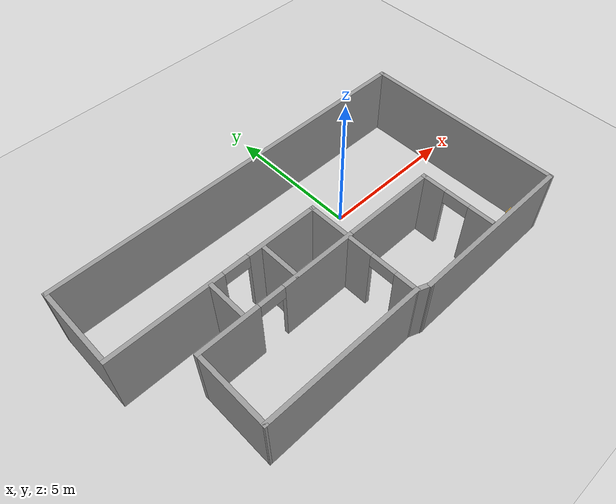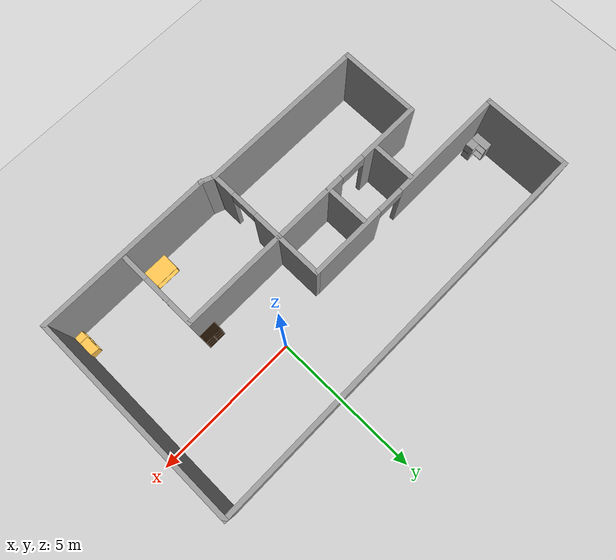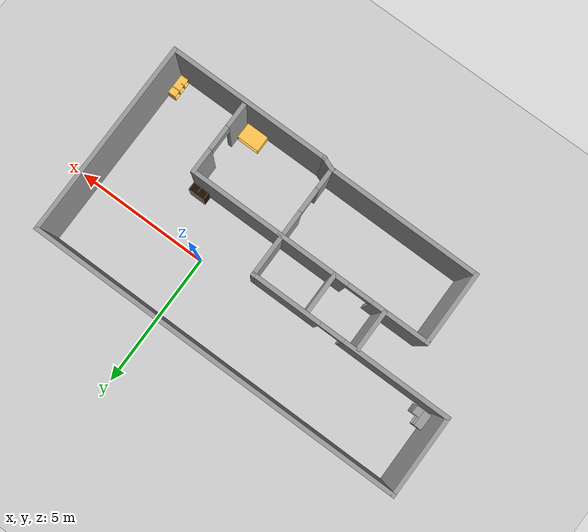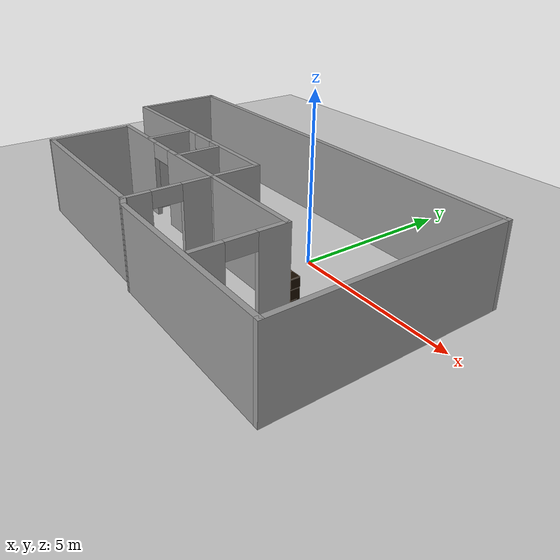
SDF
<sdf version="1.6">
 <world name="default">
  <model name="ground_plane">
   <static>1</static>
   <link name="link">
    <collision name="collision">
     <geometry><plane><normal>0 0 1</normal><size>100 100</size></plane></geometry>
     <surface>
      <contact><collide_bitmask>65535</collide_bitmask></contact>
      <friction><ode><mu>100</mu><mu2>50</mu2></ode></friction>
     </surface>
    </collision>
    <visual name="visual">
     <cast_shadows>0</cast_shadows>
     <geometry><plane><normal>0 0 1</normal><size>100 100</size></plane></geometry>
     <material>
      <script><uri>file://media/materials/scripts/gazebo.material</uri><name>Gazebo/Grey</name></script>
     </material>
    </visual>
   </link>
  </model>
  <model name="Please">
   <pose>-2.39128 -1.23168 0 0 -0 0</pose>
   <link name="Wall_12">
    <pose>0.55 -1.33922 0 0 0 -1.5708</pose>
    <visual name="Wall_12_Visual_0">
     <pose>-0.870785 0 1.25 0 -0 0</pose>
     <geometry><box><size>2.50843 0.15 2.5</size></box></geometry>
     <material>
      <script><uri>file://media/materials/scripts/gazebo.material</uri><name>Gazebo/Grey</name></script>
      <ambient>1 1 1 1</ambient>
     </material>
     <meta><layer>0</layer></meta>
    </visual>
    <collision name="Wall_12_Collision_0">
     <geometry><box><size>2.50843 0.15 2.5</size></box></geometry>
     <pose>-0.870785 0 1.25 0 -0 0</pose>
    </collision>
    <visual name="Wall_12_Visual_1">
     <pose>1.70422 0 1.25 0 -0 0</pose>
     <geometry><box><size>0.84157 0.15 2.5</size></box></geometry>
     <material>
      <script><uri>file://media/materials/scripts/gazebo.material</uri><name>Gazebo/Grey</name></script>
      <ambient>1 1 1 1</ambient>
     </material>
     <meta><layer>0</layer></meta>
    </visual>
    <collision name="Wall_12_Collision_1">
     <geometry><box><size>0.84157 0.15 2.5</size></box></geometry>
     <pose>1.70422 0 1.25 0 -0 0</pose>
    </collision>
    <visual name="Wall_12_Visual_2">
     <pose>0.83343 0 2.25 0 -0 0</pose>
     <geometry><box><size>0.9 0.15 0.5</size></box></geometry>
     <material>
      <script><uri>file://media/materials/scripts/gazebo.material</uri><name>Gazebo/Grey</name></script>
      <ambient>1 1 1 1</ambient>
     </material>
     <meta><layer>0</layer></meta>
    </visual>
    <collision name="Wall_12_Collision_2">
     <geometry><box><size>0.9 0.15 0.5</size></box></geometry>
     <pose>0.83343 0 2.25 0 -0 0</pose>
    </collision>
   </link>
   <link name="Wall_13">
    <collision name="Wall_13_Collision">
     <geometry><box><size>0.5772 0.15 2.5</size></box></geometry>
     <pose>0 0 1.25 0 -0 0</pose>
    </collision>
    <visual name="Wall_13_Visual">
     <pose>0 0 1.25 0 -0 0</pose>
     <geometry><box><size>0.5772 0.15 2.5</size></box></geometry>
     <material>
      <script><uri>file://media/materials/scripts/gazebo.material</uri><name>Gazebo/Grey</name></script>
      <ambient>1 1 1 1</ambient>
     </material>
     <meta><layer>0</layer></meta>
    </visual>
    <pose>0.75 -3.46422 0 0 0 -0.358771</pose>
   </link>
   <link name="Wall_15">
    <collision name="Wall_15_Collision">
     <geometry><box><size>3.5 0.15 2.5</size></box></geometry>
     <pose>0 0 1.25 0 -0 0</pose>
    </collision>
    <visual name="Wall_15_Visual">
     <pose>0 0 1.25 0 -0 0</pose>
     <geometry><box><size>3.5 0.15 2.5</size></box></geometry>
     <material>
      <script><uri>file://media/materials/scripts/gazebo.material</uri><name>Gazebo/Grey</name></script>
      <ambient>1 1 1 1</ambient>
     </material>
     <meta><layer>0</layer></meta>
    </visual>
    <pose>2.30189 -0.773446 0 0 -0 0</pose>
   </link>
   <link name="Wall_16">
    <pose>3.97689 -2.07345 0 0 0 -1.5708</pose>
    <visual name="Wall_16_Visual_0">
     <pose>-0.906623 0 1.25 0 -0 0</pose>
     <geometry><box><size>0.936755 0.15 2.5</size></box></geometry>
     <material>
      <script><uri>file://media/materials/scripts/gazebo.material</uri><name>Gazebo/Grey</name></script>
      <ambient>1 1 1 1</ambient>
     </material>
     <meta><layer>0</layer></meta>
    </visual>
    <collision name="Wall_16_Collision_0">
     <geometry><box><size>0.936755 0.15 2.5</size></box></geometry>
     <pose>-0.906623 0 1.25 0 -0 0</pose>
    </collision>
    <visual name="Wall_16_Visual_1">
     <pose>0.918377 0 1.25 0 -0 0</pose>
     <geometry><box><size>0.913245 0.15 2.5</size></box></geometry>
     <material>
      <script><uri>file://media/materials/scripts/gazebo.material</uri><name>Gazebo/Grey</name></script>
      <ambient>1 1 1 1</ambient>
     </material>
     <meta><layer>0</layer></meta>
    </visual>
    <collision name="Wall_16_Collision_1">
     <geometry><box><size>0.913245 0.15 2.5</size></box></geometry>
     <pose>0.918377 0 1.25 0 -0 0</pose>
    </collision>
    <visual name="Wall_16_Visual_2">
     <pose>0.011755 0 2.25 0 -0 0</pose>
     <geometry><box><size>0.9 0.15 0.5</size></box></geometry>
     <material>
      <script><uri>file://media/materials/scripts/gazebo.material</uri><name>Gazebo/Grey</name></script>
      <ambient>1 1 1 1</ambient>
     </material>
     <meta><layer>0</layer></meta>
    </visual>
    <collision name="Wall_16_Collision_2">
     <geometry><box><size>0.9 0.15 0.5</size></box></geometry>
     <pose>0.011755 0 2.25 0 -0 0</pose>
    </collision>
   </link>
   <link name="Wall_18">
    <pose>-2.17311 -0.773446 0 0 -0 3.14159</pose>
    <visual name="Wall_18_Visual_0">
     <pose>-1.53212 0 1.25 0 -0 0</pose>
     <geometry><box><size>2.68576 0.15 2.5</size></box></geometry>
     <material>
      <script><uri>file://media/materials/scripts/gazebo.material</uri><name>Gazebo/Grey</name></script>
      <ambient>1 1 1 1</ambient>
     </material>
     <meta><layer>0</layer></meta>
    </visual>
    <collision name="Wall_18_Collision_0">
     <geometry><box><size>2.68576 0.15 2.5</size></box></geometry>
     <pose>-1.53212 0 1.25 0 -0 0</pose>
    </collision>
    <visual name="Wall_18_Visual_1">
     <pose>1.79288 0 1.25 0 -0 0</pose>
     <geometry><box><size>2.16424 0.15 2.5</size></box></geometry>
     <material>
      <script><uri>file://media/materials/scripts/gazebo.material</uri><name>Gazebo/Grey</name></script>
      <ambient>1 1 1 1</ambient>
     </material>
     <meta><layer>0</layer></meta>
    </visual>
    <collision name="Wall_18_Collision_1">
     <geometry><box><size>2.16424 0.15 2.5</size></box></geometry>
     <pose>1.79288 0 1.25 0 -0 0</pose>
    </collision>
    <visual name="Wall_18_Visual_2">
     <pose>0.260761 0 2.25 0 -0 0</pose>
     <geometry><box><size>0.9 0.15 0.5</size></box></geometry>
     <material>
      <script><uri>file://media/materials/scripts/gazebo.material</uri><name>Gazebo/Grey</name></script>
      <ambient>1 1 1 1</ambient>
     </material>
     <meta><layer>0</layer></meta>
    </visual>
    <collision name="Wall_18_Collision_2">
     <geometry><box><size>0.9 0.15 0.5</size></box></geometry>
     <pose>0.260761 0 2.25 0 -0 0</pose>
    </collision>
   </link>
   <link name="Wall_2">
    <collision name="Wall_2_Collision">
     <geometry><box><size>6 0.15 2.5</size></box></geometry>
     <pose>0 0 1.25 0 -0 0</pose>
    </collision>
    <visual name="Wall_2_Visual">
     <pose>0 0 1.25 0 -0 0</pose>
     <geometry><box><size>6 0.15 2.5</size></box></geometry>
     <material>
      <script><uri>file://media/materials/scripts/gazebo.material</uri><name>Gazebo/Grey</name></script>
      <ambient>1 1 1 1</ambient>
     </material>
     <meta><layer>0</layer></meta>
    </visual>
    <pose>3.875 -3.53922 0 0 -0 0</pose>
   </link>
   <link name="Wall_21">
    <collision name="Wall_21_Collision">
     <geometry><box><size>2.75 0.15 2.5</size></box></geometry>
     <pose>0 0 1.25 0 -0 0</pose>
    </collision>
    <visual name="Wall_21_Visual">
     <pose>0 0 1.25 0 -0 0</pose>
     <geometry><box><size>2.75 0.15 2.5</size></box></geometry>
     <material>
      <script><uri>file://media/materials/scripts/gazebo.material</uri><name>Gazebo/Grey</name></script>
      <ambient>1 1 1 1</ambient>
     </material>
     <meta><layer>0</layer></meta>
    </visual>
    <pose>-4.97311 -2.07345 0 0 0 -1.5708</pose>
   </link>
   <link name="Wall_22">
    <collision name="Wall_22_Collision">
     <geometry><box><size>5.67313 0.15 2.5</size></box></geometry>
     <pose>0 0 1.25 0 -0 0</pose>
    </collision>
    <visual name="Wall_22_Visual">
     <pose>0 0 1.25 0 -0 0</pose>
     <geometry><box><size>5.67313 0.15 2.5</size></box></geometry>
     <material>
      <script><uri>file://media/materials/scripts/gazebo.material</uri><name>Gazebo/Grey</name></script>
      <ambient>1 1 1 1</ambient>
     </material>
     <meta><layer>0</layer></meta>
    </visual>
    <pose>-2.21155 -3.38133 0 0 0 -0.002856</pose>
   </link>
   <link name="Wall_24">
    <collision name="Wall_24_Collision">
     <geometry><box><size>1.5 0.15 2.5</size></box></geometry>
     <pose>0 0 1.25 0 -0 0</pose>
    </collision>
    <visual name="Wall_24_Visual">
     <pose>0 0 1.25 0 -0 0</pose>
     <geometry><box><size>1.5 0.15 2.5</size></box></geometry>
     <material>
      <script><uri>file://media/materials/scripts/gazebo.material</uri><name>Gazebo/Grey</name></script>
      <ambient>1 1 1 1</ambient>
     </material>
     <meta><layer>0</layer></meta>
    </visual>
    <pose>-3.37833 -0.049241 0 0 0 -1.5708</pose>
   </link>
   <link name="Wall_26">
    <collision name="Wall_26_Collision">
     <geometry><box><size>1.5 0.15 2.5</size></box></geometry>
     <pose>0 0 1.25 0 -0 0</pose>
    </collision>
    <visual name="Wall_26_Visual">
     <pose>0 0 1.25 0 -0 0</pose>
     <geometry><box><size>1.5 0.15 2.5</size></box></geometry>
     <material>
      <script><uri>file://media/materials/scripts/gazebo.material</uri><name>Gazebo/Grey</name></script>
      <ambient>1 1 1 1</ambient>
     </material>
     <meta><layer>0</layer></meta>
    </visual>
    <pose>-1.47191 -0.084221 0 0 0 -1.5708</pose>
   </link>
   <link name="Wall_6">
    <collision name="Wall_6_Collision">
     <geometry><box><size>7.25 0.15 2.5</size></box></geometry>
     <pose>0 0 1.25 0 -0 0</pose>
    </collision>
    <visual name="Wall_6_Visual">
     <pose>0 0 1.25 0 -0 0</pose>
     <geometry><box><size>7.25 0.15 2.5</size></box></geometry>
     <material>
      <script><uri>file://media/materials/scripts/gazebo.material</uri><name>Gazebo/Grey</name></script>
      <ambient>1 1 1 1</ambient>
     </material>
     <meta><layer>0</layer></meta>
    </visual>
    <pose>6.8 0.010779 0 0 -0 1.5708</pose>
   </link>
   <link name="Wall_7">
    <collision name="Wall_7_Collision">
     <geometry><box><size>13.75 0.15 2.5</size></box></geometry>
     <pose>0 0 1.25 0 -0 0</pose>
    </collision>
    <visual name="Wall_7_Visual">
     <pose>0 0 1.25 0 -0 0</pose>
     <geometry><box><size>13.75 0.15 2.5</size></box></geometry>
     <material>
      <script><uri>file://media/materials/scripts/gazebo.material</uri><name>Gazebo/Grey</name></script>
      <ambient>1 1 1 1</ambient>
     </material>
     <meta><layer>0</layer></meta>
    </visual>
    <pose>0 3.56078 0 0 -0 3.14159</pose>
   </link>
   <link name="Wall_8">
    <collision name="Wall_8_Collision">
     <geometry><box><size>3 0.15 2.5</size></box></geometry>
     <pose>0 0 1.25 0 -0 0</pose>
    </collision>
    <visual name="Wall_8_Visual">
     <pose>0 0 1.25 0 -0 0</pose>
     <geometry><box><size>3 0.15 2.5</size></box></geometry>
     <material>
      <script><uri>file://media/materials/scripts/gazebo.material</uri><name>Gazebo/Grey</name></script>
      <ambient>1 1 1 1</ambient>
     </material>
     <meta><layer>0</layer></meta>
    </visual>
    <pose>-6.8 2.13578 0 0 0 -1.5708</pose>
   </link>
   <link name="Wall_9">
    <pose>-3.125 0.710779 0 0 -0 0</pose>
    <visual name="Wall_9_Visual_0">
     <pose>-1.76318 0 1.25 0 -0 0</pose>
     <geometry><box><size>3.97364 0.15 2.5</size></box></geometry>
     <material>
      <script><uri>file://media/materials/scripts/gazebo.material</uri><name>Gazebo/Grey</name></script>
      <ambient>1 1 1 1</ambient>
     </material>
     <meta><layer>0</layer></meta>
    </visual>
    <collision name="Wall_9_Collision_0">
     <geometry><box><size>3.97364 0.15 2.5</size></box></geometry>
     <pose>-1.76318 0 1.25 0 -0 0</pose>
    </collision>
    <visual name="Wall_9_Visual_1">
     <pose>2.43682 0 1.25 0 -0 0</pose>
     <geometry><box><size>2.62636 0.15 2.5</size></box></geometry>
     <material>
      <script><uri>file://media/materials/scripts/gazebo.material</uri><name>Gazebo/Grey</name></script>
      <ambient>1 1 1 1</ambient>
     </material>
     <meta><layer>0</layer></meta>
    </visual>
    <collision name="Wall_9_Collision_1">
     <geometry><box><size>2.62636 0.15 2.5</size></box></geometry>
     <pose>2.43682 0 1.25 0 -0 0</pose>
    </collision>
    <visual name="Wall_9_Visual_2">
     <pose>0.673643 0 2.25 0 -0 0</pose>
     <geometry><box><size>0.9 0.15 0.5</size></box></geometry>
     <material>
      <script><uri>file://media/materials/scripts/gazebo.material</uri><name>Gazebo/Grey</name></script>
      <ambient>1 1 1 1</ambient>
     </material>
     <meta><layer>0</layer></meta>
    </visual>
    <collision name="Wall_9_Collision_2">
     <geometry><box><size>0.9 0.15 0.5</size></box></geometry>
     <pose>0.673643 0 2.25 0 -0 0</pose>
    </collision>
   </link>
   <static>1</static>
  </model>
  <model name="6_Cube_StorageE">
   <link name="Wall_0">
    <pose>0 0 0.01 0 -0 0</pose>
    <inertial>
     <mass>1.6201</mass>
     <inertia><ixx>0.0119</ixx><iyy>0.0631</iyy><izz>0.0513</izz><ixy>0</ixy><ixz>0</ixz><iyz>0</iyz></inertia>
    </inertial>
    <collision name="Wall_0_Collision"><geometry><box><size>0.616 0.296 0.02</size></box></geometry></collision>
    <visual name="Wall_0_Visual">
     <geometry><box><size>0.616 0.296 0.02</size></box></geometry>
     <material>
      <script><uri>file://media/materials/scripts/gazebo.material</uri><name>Gazebo/Grey</name></script>
      <ambient>0.105882 0.0509804 0 1</ambient>
     </material>
    </visual>
   </link>
   <joint name="0_2" type="fixed">
    <pose>-0.308 0 0 0 -0 0</pose>
    <parent>Wall_2</parent>
    <child>Wall_0</child>
    <axis>
     <xyz>1 0 0</xyz>
     <use_parent_model_frame>0</use_parent_model_frame>
     <limit><lower>-1e+16</lower><upper>1e+16</upper></limit>
    </axis>
   </joint>
   <joint name="0_12" type="fixed">
    <parent>Wall_12</parent>
    <child>Wall_0</child>
    <axis>
     <xyz>0 0 1</xyz>
     <use_parent_model_frame>0</use_parent_model_frame>
     <limit><lower>-1e+16</lower><upper>1e+16</upper></limit>
    </axis>
   </joint>
   <joint name="0_4" type="fixed">
    <pose>0.308 0 0 0 -0 0</pose>
    <parent>Wall_4</parent>
    <child>Wall_0</child>
    <axis>
     <xyz>1 0 0</xyz>
     <use_parent_model_frame>0</use_parent_model_frame>
     <limit><lower>-1e+16</lower><upper>1e+16</upper></limit>
    </axis>
   </joint>
   <link name="Wall_10">
    <pose>0 0 0.61 0 -0 0</pose>
    <inertial>
     <mass>1.6201</mass>
     <inertia><ixx>0.0119</ixx><iyy>0.0631</iyy><izz>0.0513</izz><ixy>0</ixy><ixz>0</ixz><iyz>0</iyz></inertia>
    </inertial>
    <collision name="Wall_10_Collision"><geometry><box><size>0.616 0.296 0.02</size></box></geometry></collision>
    <visual name="Wall_10_Visual">
     <geometry><box><size>0.616 0.296 0.02</size></box></geometry>
     <material>
      <script><uri>file://media/materials/scripts/gazebo.material</uri><name>Gazebo/Grey</name></script>
      <ambient>0.105882 0.0509804 0 1</ambient>
     </material>
    </visual>
   </link>
   <joint name="10_2" type="fixed">
    <pose>-0.308 0 0 0 -0 0</pose>
    <parent>Wall_2</parent>
    <child>Wall_10</child>
    <axis>
     <xyz>1 0 0</xyz>
     <use_parent_model_frame>0</use_parent_model_frame>
     <limit><lower>-1e+16</lower><upper>1e+16</upper></limit>
    </axis>
   </joint>
   <joint name="10_12" type="fixed">
    <parent>Wall_12</parent>
    <child>Wall_10</child>
    <axis>
     <xyz>0 0 1</xyz>
     <use_parent_model_frame>0</use_parent_model_frame>
     <limit><lower>-1e+16</lower><upper>1e+16</upper></limit>
    </axis>
   </joint>
   <joint name="10_4" type="fixed">
    <pose>0.308 0 0 0 -0 0</pose>
    <parent>Wall_4</parent>
    <child>Wall_10</child>
    <axis>
     <xyz>1 0 0</xyz>
     <use_parent_model_frame>0</use_parent_model_frame>
     <limit><lower>-1e+16</lower><upper>1e+16</upper></limit>
    </axis>
   </joint>
   <link name="Wall_12">
    <pose>0 0 0.4575 0 -0 0</pose>
    <inertial>
     <mass>2.4065</mass>
     <inertia><ixx>0.0177</ixx><iyy>0.1855</iyy><izz>0.168</izz><ixy>0</ixy><ixz>0</ixz><iyz>0</iyz></inertia>
    </inertial>
    <collision name="Wall_12_Collision"><geometry><box><size>0.02 0.296 0.915</size></box></geometry></collision>
    <visual name="Wall_12_Visual">
     <geometry><box><size>0.02 0.296 0.915</size></box></geometry>
     <material>
      <script><uri>file://media/materials/scripts/gazebo.material</uri><name>Gazebo/Grey</name></script>
      <ambient>0.105882 0.0509804 0 1</ambient>
     </material>
    </visual>
   </link>
   <link name="Wall_2">
    <pose>-0.298 0 0.4575 0 -0 0</pose>
    <inertial>
     <mass>2.4065</mass>
     <inertia><ixx>0.0177</ixx><iyy>0.1855</iyy><izz>0.168</izz><ixy>0</ixy><ixz>0</ixz><iyz>0</iyz></inertia>
    </inertial>
    <collision name="Wall_2_Collision"><geometry><box><size>0.02 0.296 0.915</size></box></geometry></collision>
    <visual name="Wall_2_Visual">
     <geometry><box><size>0.02 0.296 0.915</size></box></geometry>
     <material>
      <script><uri>file://media/materials/scripts/gazebo.material</uri><name>Gazebo/Grey</name></script>
      <ambient>0.105882 0.0509804 0 1</ambient>
     </material>
    </visual>
   </link>
   <link name="Wall_4">
    <pose>0.298 0 0.4575 0 -0 0</pose>
    <inertial>
     <mass>2.4065</mass>
     <inertia><ixx>0.0177</ixx><iyy>0.1855</iyy><izz>0.168</izz><ixy>0</ixy><ixz>0</ixz><iyz>0</iyz></inertia>
    </inertial>
    <collision name="Wall_4_Collision"><geometry><box><size>0.02 0.296 0.915</size></box></geometry></collision>
    <visual name="Wall_4_Visual">
     <geometry><box><size>0.02 0.296 0.915</size></box></geometry>
     <material>
      <script><uri>file://media/materials/scripts/gazebo.material</uri><name>Gazebo/Grey</name></script>
      <ambient>0.105882 0.0509804 0 1</ambient>
     </material>
    </visual>
   </link>
   <link name="Wall_6">
    <pose>0 0 0.905 0 -0 0</pose>
    <inertial>
     <mass>1.6201</mass>
     <inertia><ixx>0.0119</ixx><iyy>0.0631</iyy><izz>0.0513</izz><ixy>0</ixy><ixz>0</ixz><iyz>0</iyz></inertia>
    </inertial>
    <collision name="Wall_6_Collision"><geometry><box><size>0.616 0.296 0.02</size></box></geometry></collision>
    <visual name="Wall_6_Visual">
     <geometry><box><size>0.616 0.296 0.02</size></box></geometry>
     <material>
      <script><uri>file://media/materials/scripts/gazebo.material</uri><name>Gazebo/Grey</name></script>
      <ambient>0.105882 0.0509804 0 1</ambient>
     </material>
    </visual>
   </link>
   <joint name="6_2" type="fixed">
    <pose>-0.308 0 0 0 -0 0</pose>
    <parent>Wall_2</parent>
    <child>Wall_6</child>
    <axis>
     <xyz>2 0 0</xyz>
     <use_parent_model_frame>0</use_parent_model_frame>
     <limit><lower>-1e+16</lower><upper>1e+16</upper></limit>
    </axis>
   </joint>
   <joint name="6_12" type="fixed">
    <parent>Wall_12</parent>
    <child>Wall_6</child>
    <axis>
     <xyz>0 0 1</xyz>
     <use_parent_model_frame>0</use_parent_model_frame>
     <limit><lower>-1e+16</lower><upper>1e+16</upper></limit>
    </axis>
   </joint>
   <joint name="6_4" type="fixed">
    <pose>0.308 0 0 0 -0 0</pose>
    <parent>Wall_4</parent>
    <child>Wall_6</child>
    <axis>
     <xyz>1 0 0</xyz>
     <use_parent_model_frame>0</use_parent_model_frame>
     <limit><lower>-1e+16</lower><upper>1e+16</upper></limit>
    </axis>
   </joint>
   <link name="Wall_8">
    <pose>0 0 0.305 0 -0 0</pose>
    <inertial>
     <mass>1.6201</mass>
     <inertia><ixx>0.0119</ixx><iyy>0.0631</iyy><izz>0.0513</izz><ixy>0</ixy><ixz>0</ixz><iyz>0</iyz></inertia>
    </inertial>
    <collision name="Wall_8_Collision"><geometry><box><size>0.616 0.296 0.02</size></box></geometry></collision>
    <visual name="Wall_8_Visual">
     <geometry><box><size>0.616 0.296 0.02</size></box></geometry>
     <material>
      <script><uri>file://media/materials/scripts/gazebo.material</uri><name>Gazebo/Grey</name></script>
      <ambient>0.105882 0.0509804 0 1</ambient>
     </material>
    </visual>
   </link>
   <joint name="8_2" type="fixed">
    <pose>-0.308 0 0 0 -0 0</pose>
    <parent>Wall_2</parent>
    <child>Wall_8</child>
    <axis>
     <xyz>1 0 0</xyz>
     <use_parent_model_frame>0</use_parent_model_frame>
     <limit><lower>-1e+16</lower><upper>1e+16</upper></limit>
    </axis>
   </joint>
   <joint name="8_12" type="fixed">
    <parent>Wall_12</parent>
    <child>Wall_8</child>
    <axis>
     <xyz>0 0 1</xyz>
     <use_parent_model_frame>0</use_parent_model_frame>
     <limit><lower>-1e+16</lower><upper>1e+16</upper></limit>
    </axis>
   </joint>
   <joint name="8_4" type="fixed">
    <pose>0.308 0 0 0 -0 0</pose>
    <parent>Wall_4</parent>
    <child>Wall_8</child>
    <axis>
     <xyz>1 0 0</xyz>
     <use_parent_model_frame>0</use_parent_model_frame>
     <limit><lower>-1e+16</lower><upper>1e+16</upper></limit>
    </axis>
   </joint>
   <static>1</static>
   <pose>1.34445 -1.76966 0 0 -0 0</pose>
  </model>
  <model name="Wall_Cabinet_15x30">
   <pose>4.17135 -4.31547 0 0 -0 0</pose>
   <link name="Wall_0">
    <pose>0 0.374 0.192 0 -0 0</pose>
    <inertial>
     <mass>0.9882</mass>
     <inertia><ixx>0.0072</ixx><iyy>0.0194</iyy><izz>0.0122</izz><ixy>0</ixy><ixz>0</ixz><iyz>0</iyz></inertia>
    </inertial>
    <collision name="Wall_0_Collision"><geometry><box><size>0.296 0.02 0.384</size></box></geometry></collision>
    <visual name="Wall_0_Visual">
     <geometry><box><size>0.296 0.02 0.384</size></box></geometry>
     <material>
      <script><uri>file://media/materials/scripts/gazebo.material</uri><name>Gazebo/Grey</name></script>
      <ambient>1 0.764706 0.305882 1</ambient>
     </material>
    </visual>
   </link>
   <joint name="0_2" type="fixed">
    <pose>0 0 0.192 0 -0 0</pose>
    <parent>Wall_2</parent>
    <child>Wall_0</child>
    <axis>
     <xyz>0 0 1</xyz>
     <use_parent_model_frame>0</use_parent_model_frame>
     <limit><lower>-1e+16</lower><upper>1e+16</upper></limit>
    </axis>
   </joint>
   <joint name="0_4" type="fixed">
    <pose>0 0 -0.192 0 -0 0</pose>
    <parent>Wall_4</parent>
    <child>Wall_0</child>
    <axis>
     <xyz>0 0 1</xyz>
     <use_parent_model_frame>0</use_parent_model_frame>
     <limit><lower>-1e+16</lower><upper>1e+16</upper></limit>
    </axis>
   </joint>
   <joint name="0_15" type="fixed">
    <pose>0.148 0 0 0 -0 0</pose>
    <parent>Wall_15</parent>
    <child>Wall_0</child>
    <axis>
     <xyz>1 0 0</xyz>
     <use_parent_model_frame>0</use_parent_model_frame>
     <limit><lower>-1e+16</lower><upper>1e+16</upper></limit>
    </axis>
   </joint>
   <link name="Wall_11">
    <pose>0 -0.132768 0.192 0 -0 0</pose>
    <inertial>
     <mass>0.9882</mass>
     <inertia><ixx>0.0072</ixx><iyy>0.0194</iyy><izz>0.0122</izz><ixy>0</ixy><ixz>0</ixz><iyz>0</iyz></inertia>
    </inertial>
    <collision name="Wall_11_Collision"><geometry><box><size>0.296 0.02 0.384</size></box></geometry></collision>
    <visual name="Wall_11_Visual">
     <geometry><box><size>0.296 0.02 0.384</size></box></geometry>
     <material>
      <script><uri>file://media/materials/scripts/gazebo.material</uri><name>Gazebo/Grey</name></script>
      <ambient>1 0.764706 0.305882 1</ambient>
     </material>
    </visual>
   </link>
   <joint name="11_2" type="fixed">
    <pose>0 0 0.192 0 -0 0</pose>
    <parent>Wall_2</parent>
    <child>Wall_11</child>
    <axis>
     <xyz>0 0 1</xyz>
     <use_parent_model_frame>0</use_parent_model_frame>
     <limit><lower>-1e+16</lower><upper>1e+16</upper></limit>
    </axis>
   </joint>
   <joint name="11_4" type="fixed">
    <pose>0 0 -0.192 0 -0 0</pose>
    <parent>Wall_4</parent>
    <child>Wall_11</child>
    <axis>
     <xyz>0 0 1</xyz>
     <use_parent_model_frame>0</use_parent_model_frame>
     <limit><lower>-1e+16</lower><upper>1e+16</upper></limit>
    </axis>
   </joint>
   <joint name="11_15" type="fixed">
    <pose>0.148 0 0 0 -0 0</pose>
    <parent>Wall_15</parent>
    <child>Wall_11</child>
    <axis>
     <xyz>1 0 0</xyz>
     <use_parent_model_frame>0</use_parent_model_frame>
     <limit><lower>-1e+16</lower><upper>1e+16</upper></limit>
    </axis>
   </joint>
   <link name="Wall_15">
    <pose>0.138 0 0.19 0 -0 0</pose>
    <inertial>
     <mass>2.5241</mass>
     <inertia><ixx>0.0305</ixx><iyy>0.1229</iyy><izz>0.1532</izz><ixy>0</ixy><ixz>0</ixz><iyz>0</iyz></inertia>
    </inertial>
    <collision name="Wall_15_Collision"><geometry><box><size>0.02 0.764 0.38</size></box></geometry></collision>
    <visual name="Wall_15_Visual">
     <geometry><box><size>0.02 0.764 0.38</size></box></geometry>
     <material>
      <script><uri>file://media/materials/scripts/gazebo.material</uri><name>Gazebo/Grey</name></script>
      <ambient>1 0.764706 0.305882 1</ambient>
     </material>
    </visual>
   </link>
   <joint name="15_2" type="fixed">
    <pose>0 0 0.19 0 -0 0</pose>
    <parent>Wall_2</parent>
    <child>Wall_15</child>
    <axis>
     <xyz>0 0 1</xyz>
     <use_parent_model_frame>0</use_parent_model_frame>
     <limit><lower>-1e+16</lower><upper>1e+16</upper></limit>
    </axis>
   </joint>
   <joint name="15_4" type="fixed">
    <pose>0 0 -0.19 0 -0 0</pose>
    <parent>Wall_4</parent>
    <child>Wall_15</child>
    <axis>
     <xyz>0 0 1</xyz>
     <use_parent_model_frame>0</use_parent_model_frame>
     <limit><lower>-1e+16</lower><upper>1e+16</upper></limit>
    </axis>
   </joint>
   <link name="Wall_2">
    <pose>0 0 0.374 0 -0 0</pose>
    <inertial>
     <mass>1.9765</mass>
     <inertia><ixx>0.0145</ixx><iyy>0.1116</iyy><izz>0.0972</izz><ixy>0</ixy><ixz>0</ixz><iyz>0</iyz></inertia>
    </inertial>
    <collision name="Wall_2_Collision"><geometry><box><size>0.296 0.768 0.02</size></box></geometry></collision>
    <visual name="Wall_2_Visual">
     <geometry><box><size>0.296 0.768 0.02</size></box></geometry>
     <material>
      <script><uri>file://media/materials/scripts/gazebo.material</uri><name>Gazebo/Grey</name></script>
      <ambient>1 0.764706 0.305882 1</ambient>
     </material>
    </visual>
   </link>
   <link name="Wall_4">
    <pose>0 0 0.01 0 -0 0</pose>
    <inertial>
     <mass>1.9765</mass>
     <inertia><ixx>0.0145</ixx><iyy>0.1116</iyy><izz>0.0972</izz><ixy>0</ixy><ixz>0</ixz><iyz>0</iyz></inertia>
    </inertial>
    <collision name="Wall_4_Collision"><geometry><box><size>0.296 0.768 0.02</size></box></geometry></collision>
    <visual name="Wall_4_Visual">
     <geometry><box><size>0.296 0.768 0.02</size></box></geometry>
     <material>
      <script><uri>file://media/materials/scripts/gazebo.material</uri><name>Gazebo/Grey</name></script>
      <ambient>1 0.764706 0.305882 1</ambient>
     </material>
    </visual>
    <pose>-0.181124 0 0 0 0 -1.5708</pose>
   </link>
   <link name="Wall_6">
    <pose>0 -0.374 0.192 0 -0 0</pose>
    <inertial>
     <mass>0.9882</mass>
     <inertia><ixx>0.0072</ixx><iyy>0.0194</iyy><izz>0.0122</izz><ixy>0</ixy><ixz>0</ixz><iyz>0</iyz></inertia>
    </inertial>
    <collision name="Wall_6_Collision"><geometry><box><size>0.296 0.02 0.384</size></box></geometry></collision>
    <visual name="Wall_6_Visual">
     <geometry><box><size>0.296 0.02 0.384</size></box></geometry>
     <material>
      <script><uri>file://media/materials/scripts/gazebo.material</uri><name>Gazebo/Grey</name></script>
      <ambient>1 0.764706 0.305882 1</ambient>
     </material>
    </visual>
   </link>
   <joint name="6_2" type="fixed">
    <pose>0 0 0.192 0 -0 0</pose>
    <parent>Wall_2</parent>
    <child>Wall_6</child>
    <axis>
     <xyz>0 0 1</xyz>
     <use_parent_model_frame>0</use_parent_model_frame>
     <limit><lower>-1e+16</lower><upper>1e+16</upper></limit>
    </axis>
   </joint>
   <joint name="6_4" type="fixed">
    <pose>0 0 -0.192 0 -0 0</pose>
    <parent>Wall_4</parent>
    <child>Wall_6</child>
    <axis>
     <xyz>0 0 1</xyz>
     <use_parent_model_frame>0</use_parent_model_frame>
     <limit><lower>-1e+16</lower><upper>1e+16</upper></limit>
    </axis>
   </joint>
   <joint name="6_15" type="fixed">
    <pose>0.148 0 0 0 -0 0</pose>
    <parent>Wall_15</parent>
    <child>Wall_6</child>
    <axis>
     <xyz>1 0 0</xyz>
     <use_parent_model_frame>0</use_parent_model_frame>
     <limit><lower>-1e+16</lower><upper>1e+16</upper></limit>
    </axis>
   </joint>
   <link name="Wall_8">
    <pose>0 0.120833 0.192 0 -0 0</pose>
    <inertial>
     <mass>0.9882</mass>
     <inertia><ixx>0.0072</ixx><iyy>0.0194</iyy><izz>0.0122</izz><ixy>0</ixy><ixz>0</ixz><iyz>0</iyz></inertia>
    </inertial>
    <collision name="Wall_8_Collision"><geometry><box><size>0.296 0.02 0.384</size></box></geometry></collision>
    <visual name="Wall_8_Visual">
     <geometry><box><size>0.296 0.02 0.384</size></box></geometry>
     <material>
      <script><uri>file://media/materials/scripts/gazebo.material</uri><name>Gazebo/Grey</name></script>
      <ambient>1 0.764706 0.305882 1</ambient>
     </material>
    </visual>
   </link>
   <joint name="8_2" type="fixed">
    <pose>0 0 0.192 0 -0 0</pose>
    <parent>Wall_2</parent>
    <child>Wall_8</child>
    <axis>
     <xyz>0 0 1</xyz>
     <use_parent_model_frame>0</use_parent_model_frame>
     <limit><lower>-1e+16</lower><upper>1e+16</upper></limit>
    </axis>
   </joint>
   <joint name="8_4" type="fixed">
    <pose>0 0 -0.192 0 -0 0</pose>
    <parent>Wall_4</parent>
    <child>Wall_8</child>
    <axis>
     <xyz>0 0 1</xyz>
     <use_parent_model_frame>0</use_parent_model_frame>
     <limit><lower>-1e+16</lower><upper>1e+16</upper></limit>
    </axis>
   </joint>
   <joint name="8_15" type="fixed">
    <pose>0.148 0 0 0 -0 0</pose>
    <parent>Wall_15</parent>
    <child>Wall_8</child>
    <axis>
     <xyz>1 0 0</xyz>
     <use_parent_model_frame>0</use_parent_model_frame>
     <limit><lower>-1e+16</lower><upper>1e+16</upper></limit>
    </axis>
   </joint>
   <static>1</static>
  </model>
  <model name="Fridge_Cabinet_33x15">
   <link name="Wall_17">
    <pose>0 0 0.01 0 -0 0</pose>
    <inertial>
     <mass>4.8627</mass>
     <inertia><ixx>0.146</ixx><iyy>0.4318</iyy><izz>0.2861</izz><ixy>0</ixy><ixz>0</ixz><iyz>0</iyz></inertia>
    </inertial>
    <collision name="Wall_17_Collision"><geometry><box><size>0.84 0.6 0.02</size></box></geometry></collision>
    <visual name="Wall_17_Visual">
     <geometry><box><size>0.84 0.6 0.02</size></box></geometry>
     <material>
      <script><uri>file://media/materials/scripts/gazebo.material</uri><name>Gazebo/Grey</name></script>
      <ambient>1 0.764706 0.305882 1</ambient>
     </material>
    </visual>
   </link>
   <joint name="17_21" type="fixed">
    <pose>0.42 0 0 0 -0 0</pose>
    <parent>Wall_21</parent>
    <child>Wall_17</child>
    <axis>
     <xyz>1 0 0</xyz>
     <use_parent_model_frame>0</use_parent_model_frame>
     <limit><lower>-1e+16</lower><upper>1e+16</upper></limit>
    </axis>
   </joint>
   <joint name="17_19" type="fixed">
    <pose>-0.42 0 0 0 -0 0</pose>
    <parent>Wall_19</parent>
    <child>Wall_17</child>
    <axis>
     <xyz>1 0 0</xyz>
     <use_parent_model_frame>0</use_parent_model_frame>
     <limit><lower>-1e+16</lower><upper>1e+16</upper></limit>
    </axis>
   </joint>
   <joint name="17_25" type="fixed">
    <pose>0 -0.3 0 0 -0 0</pose>
    <parent>Wall_25</parent>
    <child>Wall_17</child>
    <axis>
     <xyz>0 1 0</xyz>
     <use_parent_model_frame>0</use_parent_model_frame>
     <limit><lower>-1e+16</lower><upper>1e+16</upper></limit>
    </axis>
   </joint>
   <link name="Wall_19">
    <pose>-0.41 0 0.192 0 -0 0</pose>
    <inertial>
     <mass>2.223</mass>
     <inertia><ixx>0.0668</ixx><iyy>0.094</iyy><izz>0.0274</izz><ixy>0</ixy><ixz>0</ixz><iyz>0</iyz></inertia>
    </inertial>
    <collision name="Wall_19_Collision"><geometry><box><size>0.02 0.6 0.384</size></box></geometry></collision>
    <visual name="Wall_19_Visual">
     <geometry><box><size>0.02 0.6 0.384</size></box></geometry>
     <material>
      <script><uri>file://media/materials/scripts/gazebo.material</uri><name>Gazebo/Grey</name></script>
      <ambient>1 0.764706 0.305882 1</ambient>
     </material>
    </visual>
   </link>
   <link name="Wall_21">
    <pose>0.41 0 0.192 0 -0 0</pose>
    <inertial>
     <mass>2.223</mass>
     <inertia><ixx>0.0668</ixx><iyy>0.094</iyy><izz>0.0274</izz><ixy>0</ixy><ixz>0</ixz><iyz>0</iyz></inertia>
    </inertial>
    <collision name="Wall_21_Collision"><geometry><box><size>0.02 0.6 0.384</size></box></geometry></collision>
    <visual name="Wall_21_Visual">
     <geometry><box><size>0.02 0.6 0.384</size></box></geometry>
     <material>
      <script><uri>file://media/materials/scripts/gazebo.material</uri><name>Gazebo/Grey</name></script>
      <ambient>1 0.764706 0.305882 1</ambient>
     </material>
    </visual>
   </link>
   <link name="Wall_23">
    <pose>0 0 0.374 0 -0 0</pose>
    <inertial>
     <mass>4.8627</mass>
     <inertia><ixx>0.146</ixx><iyy>0.4318</iyy><izz>0.2861</izz><ixy>0</ixy><ixz>0</ixz><iyz>0</iyz></inertia>
    </inertial>
    <collision name="Wall_23_Collision"><geometry><box><size>0.84 0.6 0.02</size></box></geometry></collision>
    <visual name="Wall_23_Visual">
     <geometry><box><size>0.84 0.6 0.02</size></box></geometry>
     <material>
      <script><uri>file://media/materials/scripts/gazebo.material</uri><name>Gazebo/Grey</name></script>
      <ambient>1 0.764706 0.305882 1</ambient>
     </material>
    </visual>
   </link>
   <joint name="23_21" type="fixed">
    <pose>0.42 0 0 0 -0 0</pose>
    <parent>Wall_21</parent>
    <child>Wall_23</child>
    <axis>
     <xyz>0 0 1</xyz>
     <use_parent_model_frame>0</use_parent_model_frame>
     <limit><lower>-1e+16</lower><upper>1e+16</upper></limit>
    </axis>
   </joint>
   <joint name="23_19" type="fixed">
    <pose>-0.42 0 0 0 -0 0</pose>
    <parent>Wall_19</parent>
    <child>Wall_23</child>
    <axis>
     <xyz>0 0 1</xyz>
     <use_parent_model_frame>0</use_parent_model_frame>
     <limit><lower>-1e+16</lower><upper>1e+16</upper></limit>
    </axis>
   </joint>
   <joint name="23_25" type="fixed">
    <pose>0 -0.3 0 0 -0 0</pose>
    <parent>Wall_25</parent>
    <child>Wall_23</child>
    <axis>
     <xyz>0 0 1</xyz>
     <use_parent_model_frame>0</use_parent_model_frame>
     <limit><lower>-1e+16</lower><upper>1e+16</upper></limit>
    </axis>
   </joint>
   <link name="Wall_25">
    <pose>0 -0.29 0.19 0 -0 0</pose>
    <inertial>
     <mass>3.0651</mass>
     <inertia><ixx>0.037</ixx><iyy>0.1786</iyy><izz>0.2154</izz><ixy>0</ixy><ixz>0</ixz><iyz>0</iyz></inertia>
    </inertial>
    <collision name="Wall_25_Collision"><geometry><box><size>0.836 0.02 0.38</size></box></geometry></collision>
    <visual name="Wall_25_Visual">
     <geometry><box><size>0.836 0.02 0.38</size></box></geometry>
     <material>
      <script><uri>file://media/materials/scripts/gazebo.material</uri><name>Gazebo/Grey</name></script>
      <ambient>1 0.764706 0.305882 1</ambient>
     </material>
    </visual>
   </link>
   <joint name="25_21" type="fixed">
    <pose>0.42 0 0 0 -0 0</pose>
    <parent>Wall_21</parent>
    <child>Wall_25</child>
    <axis>
     <xyz>0 1 0</xyz>
     <use_parent_model_frame>0</use_parent_model_frame>
     <limit><lower>-1e+16</lower><upper>1e+16</upper></limit>
    </axis>
   </joint>
   <joint name="25_19" type="fixed">
    <pose>-0.42 0 0 0 -0 0</pose>
    <parent>Wall_19</parent>
    <child>Wall_25</child>
    <axis>
     <xyz>0 1 0</xyz>
     <use_parent_model_frame>0</use_parent_model_frame>
     <limit><lower>-1e+16</lower><upper>1e+16</upper></limit>
    </axis>
   </joint>
   <static>1</static>
   <pose>1.07017 -4.40528 0 0 -0 0</pose>
  </model>
  <model name="Wall_Cabinet_Coin_24x30W">
   <link name="Wall_10">
    <pose>0.286 -0.148 0.384 0 -0 0</pose>
    <inertial>
     <mass>2.1259</mass>
     <inertia><ixx>0.0158</ixx><iyy>0.1202</iyy><izz>0.1046</izz><ixy>0</ixy><ixz>0</ixz><iyz>0</iyz></inertia>
    </inertial>
    <collision name="Wall_10_Collision"><geometry><box><size>0.02 0.296 0.768</size></box></geometry></collision>
    <visual name="Wall_10_Visual">
     <geometry><box><size>0.02 0.296 0.768</size></box></geometry>
     <material>
      <script><uri>file://media/materials/scripts/gazebo.material</uri><name>Gazebo/Grey</name></script>
      <ambient>1 1 1 1</ambient>
     </material>
    </visual>
   </link>
   <joint name="10_16" type="fixed">
    <pose>0 0 -0.374 0 -0 0</pose>
    <parent>Wall_16</parent>
    <child>Wall_10</child>
    <axis>
     <xyz>1 0 0</xyz>
     <use_parent_model_frame>0</use_parent_model_frame>
     <limit><lower>-1e+16</lower><upper>1e+16</upper></limit>
    </axis>
   </joint>
   <joint name="10_14" type="fixed">
    <parent>Wall_14</parent>
    <child>Wall_10</child>
    <axis>
     <xyz>1 0 0</xyz>
     <use_parent_model_frame>0</use_parent_model_frame>
     <limit><lower>-1e+16</lower><upper>1e+16</upper></limit>
    </axis>
   </joint>
   <joint name="10_12" type="fixed">
    <pose>0 0 0.374 0 -0 0</pose>
    <parent>Wall_12</parent>
    <child>Wall_10</child>
    <axis>
     <xyz>1 0 0</xyz>
     <use_parent_model_frame>0</use_parent_model_frame>
     <limit><lower>-1e+16</lower><upper>1e+16</upper></limit>
    </axis>
   </joint>
   <joint name="10_29" type="fixed">
    <pose>0 -0.148 0 0 -0 0</pose>
    <parent>Wall_29</parent>
    <child>Wall_10</child>
    <axis>
     <xyz>1 0 0</xyz>
     <use_parent_model_frame>0</use_parent_model_frame>
     <limit><lower>-1e+16</lower><upper>1e+16</upper></limit>
    </axis>
   </joint>
   <link name="Wall_12">
    <pose>0.148 -0.148 0.758 0 -0 0</pose>
    <inertial>
     <mass>0.8802</mass>
     <inertia><ixx>0.0065</ixx><iyy>0.0139</iyy><izz>0.0074</izz><ixy>0</ixy><ixz>0</ixz><iyz>0</iyz></inertia>
    </inertial>
    <collision name="Wall_12_Collision"><geometry><box><size>0.296 0.296 0.02</size></box></geometry></collision>
    <visual name="Wall_12_Visual">
     <geometry><box><size>0.296 0.296 0.02</size></box></geometry>
     <material>
      <script><uri>file://media/materials/scripts/gazebo.material</uri><name>Gazebo/Grey</name></script>
      <ambient>1 1 1 1</ambient>
     </material>
    </visual>
   </link>
   <joint name="12_29" type="fixed">
    <pose>0 -0.148 0 0 -0 0</pose>
    <parent>Wall_29</parent>
    <child>Wall_12</child>
    <axis>
     <xyz>0 0 1</xyz>
     <use_parent_model_frame>0</use_parent_model_frame>
     <limit><lower>-1e+16</lower><upper>1e+16</upper></limit>
    </axis>
   </joint>
   <link name="Wall_14">
    <pose>0.148 -0.148 0.384 0 -0 0</pose>
    <inertial>
     <mass>0.8802</mass>
     <inertia><ixx>0.0065</ixx><iyy>0.0139</iyy><izz>0.0074</izz><ixy>0</ixy><ixz>0</ixz><iyz>0</iyz></inertia>
    </inertial>
    <collision name="Wall_14_Collision"><geometry><box><size>0.296 0.296 0.02</size></box></geometry></collision>
    <visual name="Wall_14_Visual">
     <geometry><box><size>0.296 0.296 0.02</size></box></geometry>
     <material>
      <script><uri>file://media/materials/scripts/gazebo.material</uri><name>Gazebo/Grey</name></script>
      <ambient>1 1 1 1</ambient>
     </material>
    </visual>
   </link>
   <joint name="14_29" type="fixed">
    <pose>0 -0.148 0 0 -0 0</pose>
    <parent>Wall_29</parent>
    <child>Wall_14</child>
    <axis>
     <xyz>0 1 0</xyz>
     <use_parent_model_frame>0</use_parent_model_frame>
     <limit><lower>-1e+16</lower><upper>1e+16</upper></limit>
    </axis>
   </joint>
   <link name="Wall_16">
    <pose>0.148 -0.148 0.01 0 -0 0</pose>
    <inertial>
     <mass>0.8802</mass>
     <inertia><ixx>0.0065</ixx><iyy>0.0139</iyy><izz>0.0074</izz><ixy>0</ixy><ixz>0</ixz><iyz>0</iyz></inertia>
    </inertial>
    <collision name="Wall_16_Collision"><geometry><box><size>0.296 0.296 0.02</size></box></geometry></collision>
    <visual name="Wall_16_Visual">
     <geometry><box><size>0.296 0.296 0.02</size></box></geometry>
     <material>
      <script><uri>file://media/materials/scripts/gazebo.material</uri><name>Gazebo/Grey</name></script>
      <ambient>1 1 1 1</ambient>
     </material>
    </visual>
   </link>
   <joint name="16_29" type="fixed">
    <pose>0 -0.148 0 0 -0 0</pose>
    <parent>Wall_29</parent>
    <child>Wall_16</child>
    <axis>
     <xyz>0 1 0</xyz>
     <use_parent_model_frame>0</use_parent_model_frame>
     <limit><lower>-1e+16</lower><upper>1e+16</upper></limit>
    </axis>
   </joint>
   <link name="Wall_18">
    <pose>-0.148 0 0.01 0 -0 0</pose>
    <inertial>
     <mass>1.6525</mass>
     <inertia><ixx>0.0491</ixx><iyy>0.0613</iyy><izz>0.0123</izz><ixy>0</ixy><ixz>0</ixz><iyz>0</iyz></inertia>
    </inertial>
    <collision name="Wall_18_Collision"><geometry><box><size>0.296 0.592 0.02</size></box></geometry></collision>
    <visual name="Wall_18_Visual">
     <geometry><box><size>0.296 0.592 0.02</size></box></geometry>
     <material>
      <script><uri>file://media/materials/scripts/gazebo.material</uri><name>Gazebo/Grey</name></script>
      <ambient>1 1 1 1</ambient>
     </material>
    </visual>
   </link>
   <joint name="18_16" type="fixed">
    <pose>0.148 -0.148 0 0 -0 0</pose>
    <parent>Wall_16</parent>
    <child>Wall_18</child>
    <axis>
     <xyz>1 0 0</xyz>
     <use_parent_model_frame>0</use_parent_model_frame>
     <limit><lower>-1e+16</lower><upper>1e+16</upper></limit>
    </axis>
   </joint>
   <joint name="18_29" type="fixed">
    <pose>0 -0.296 0 0 -0 0</pose>
    <parent>Wall_29</parent>
    <child>Wall_18</child>
    <axis>
     <xyz>0 1 0</xyz>
     <use_parent_model_frame>0</use_parent_model_frame>
     <limit><lower>-1e+16</lower><upper>1e+16</upper></limit>
    </axis>
   </joint>
   <joint name="18_27" type="fixed">
    <pose>-0.148 0 0 0 -0 0</pose>
    <parent>Wall_27</parent>
    <child>Wall_18</child>
    <axis>
     <xyz>1 0 0</xyz>
     <use_parent_model_frame>0</use_parent_model_frame>
     <limit><lower>-1e+16</lower><upper>1e+16</upper></limit>
    </axis>
   </joint>
   <joint name="18_30" type="fixed">
    <pose>0 0.296 0 0 -0 0</pose>
    <parent>Wall_30</parent>
    <child>Wall_18</child>
    <axis>
     <xyz>0 1 0</xyz>
     <use_parent_model_frame>0</use_parent_model_frame>
     <limit><lower>-1e+16</lower><upper>1e+16</upper></limit>
    </axis>
   </joint>
   <link name="Wall_20">
    <pose>-0.148 0 0.384 0 -0 0</pose>
    <inertial>
     <mass>1.6525</mass>
     <inertia><ixx>0.0491</ixx><iyy>0.0613</iyy><izz>0.0123</izz><ixy>0</ixy><ixz>0</ixz><iyz>0</iyz></inertia>
    </inertial>
    <collision name="Wall_20_Collision"><geometry><box><size>0.296 0.592 0.02</size></box></geometry></collision>
    <visual name="Wall_20_Visual">
     <geometry><box><size>0.296 0.592 0.02</size></box></geometry>
     <material>
      <script><uri>file://media/materials/scripts/gazebo.material</uri><name>Gazebo/Grey</name></script>
      <ambient>1 1 1 1</ambient>
     </material>
    </visual>
   </link>
   <joint name="20_14" type="fixed">
    <pose>0.148 -0.148 0 0 -0 0</pose>
    <parent>Wall_14</parent>
    <child>Wall_20</child>
    <axis>
     <xyz>1 0 0</xyz>
     <use_parent_model_frame>0</use_parent_model_frame>
     <limit><lower>-1e+16</lower><upper>1e+16</upper></limit>
    </axis>
   </joint>
   <joint name="20_29" type="fixed">
    <pose>0 -0.296 0 0 -0 0</pose>
    <parent>Wall_29</parent>
    <child>Wall_20</child>
    <axis>
     <xyz>0 1 0</xyz>
     <use_parent_model_frame>0</use_parent_model_frame>
     <limit><lower>-1e+16</lower><upper>1e+16</upper></limit>
    </axis>
   </joint>
   <joint name="20_27" type="fixed">
    <pose>-0.148 0 0 0 -0 0</pose>
    <parent>Wall_27</parent>
    <child>Wall_20</child>
    <axis>
     <xyz>1 0 0</xyz>
     <use_parent_model_frame>0</use_parent_model_frame>
     <limit><lower>-1e+16</lower><upper>1e+16</upper></limit>
    </axis>
   </joint>
   <joint name="20_30" type="fixed">
    <pose>0 0.296 0 0 -0 0</pose>
    <parent>Wall_30</parent>
    <child>Wall_20</child>
    <axis>
     <xyz>0 1 0</xyz>
     <use_parent_model_frame>0</use_parent_model_frame>
     <limit><lower>-1e+16</lower><upper>1e+16</upper></limit>
    </axis>
   </joint>
   <link name="Wall_22">
    <pose>-0.148 0 0.758 0 -0 0</pose>
    <inertial>
     <mass>1.6525</mass>
     <inertia><ixx>0.0491</ixx><iyy>0.0613</iyy><izz>0.0123</izz><ixy>0</ixy><ixz>0</ixz><iyz>0</iyz></inertia>
    </inertial>
    <collision name="Wall_22_Collision"><geometry><box><size>0.296 0.592 0.02</size></box></geometry></collision>
    <visual name="Wall_22_Visual">
     <geometry><box><size>0.296 0.592 0.02</size></box></geometry>
     <material>
      <script><uri>file://media/materials/scripts/gazebo.material</uri><name>Gazebo/Grey</name></script>
      <ambient>1 1 1 1</ambient>
     </material>
    </visual>
   </link>
   <joint name="22_12" type="fixed">
    <pose>0.148 -0.148 0 0 -0 0</pose>
    <parent>Wall_12</parent>
    <child>Wall_22</child>
    <axis>
     <xyz>1 0 0</xyz>
     <use_parent_model_frame>0</use_parent_model_frame>
     <limit><lower>-1e+16</lower><upper>1e+16</upper></limit>
    </axis>
   </joint>
   <joint name="22_29" type="fixed">
    <pose>0 -0.296 0 0 -0 0</pose>
    <parent>Wall_29</parent>
    <child>Wall_22</child>
    <axis>
     <xyz>0 1 0</xyz>
     <use_parent_model_frame>0</use_parent_model_frame>
     <limit><lower>-1e+16</lower><upper>1e+16</upper></limit>
    </axis>
   </joint>
   <joint name="22_27" type="fixed">
    <pose>-0.148 0 0 0 -0 0</pose>
    <parent>Wall_27</parent>
    <child>Wall_22</child>
    <axis>
     <xyz>1 0 0</xyz>
     <use_parent_model_frame>0</use_parent_model_frame>
     <limit><lower>-1e+16</lower><upper>1e+16</upper></limit>
    </axis>
   </joint>
   <joint name="22_30" type="fixed">
    <pose>0 0.296 0 0 -0 0</pose>
    <parent>Wall_30</parent>
    <child>Wall_22</child>
    <axis>
     <xyz>0 1 0</xyz>
     <use_parent_model_frame>0</use_parent_model_frame>
     <limit><lower>-1e+16</lower><upper>1e+16</upper></limit>
    </axis>
   </joint>
   <link name="Wall_27">
    <pose>-0.286 0 0.384 0 -0 0</pose>
    <inertial>
     <mass>4.2589</mass>
     <inertia><ixx>0.1266</ixx><iyy>0.3358</iyy><izz>0.2095</izz><ixy>0</ixy><ixz>0</ixz><iyz>0</iyz></inertia>
    </inertial>
    <collision name="Wall_27_Collision"><geometry><box><size>0.02 0.592 0.768</size></box></geometry></collision>
    <visual name="Wall_27_Visual">
     <geometry><box><size>0.02 0.592 0.768</size></box></geometry>
     <material>
      <script><uri>file://media/materials/scripts/gazebo.material</uri><name>Gazebo/Grey</name></script>
      <ambient>1 1 1 1</ambient>
     </material>
    </visual>
   </link>
   <joint name="27_30" type="fixed">
    <pose>0 0.296 0 0 -0 0</pose>
    <parent>Wall_30</parent>
    <child>Wall_27</child>
    <axis>
     <xyz>0 1 0</xyz>
     <use_parent_model_frame>0</use_parent_model_frame>
     <limit><lower>-1e+16</lower><upper>1e+16</upper></limit>
    </axis>
   </joint>
   <link name="Wall_29">
    <pose>0 -0.286 0.384 0 -0 0</pose>
    <inertial>
     <mass>4.3176</mass>
     <inertia><ixx>0.134</ixx><iyy>0.2091</iyy><izz>0.3428</izz><ixy>0</ixy><ixz>0</ixz><iyz>0</iyz></inertia>
    </inertial>
    <collision name="Wall_29_Collision"><geometry><box><size>0.592 0.02 0.768</size></box></geometry></collision>
    <visual name="Wall_29_Visual">
     <geometry><box><size>0.592 0.02 0.768</size></box></geometry>
     <material>
      <script><uri>file://media/materials/scripts/gazebo.material</uri><name>Gazebo/Grey</name></script>
      <ambient>1 1 1 1</ambient>
     </material>
    </visual>
   </link>
   <link name="Wall_30">
    <pose>-0.148 0.286 0.384 0 -0 0</pose>
    <inertial>
     <mass>2.1093</mass>
     <inertia><ixx>0.1021</ixx><iyy>0.0157</iyy><izz>0.1177</izz><ixy>0</ixy><ixz>0</ixz><iyz>0</iyz></inertia>
    </inertial>
    <collision name="Wall_30_Collision"><geometry><box><size>0.296 0.02 0.768</size></box></geometry></collision>
    <visual name="Wall_30_Visual">
     <geometry><box><size>0.296 0.02 0.768</size></box></geometry>
     <material>
      <script><uri>file://media/materials/scripts/gazebo.material</uri><name>Gazebo/Grey</name></script>
      <ambient>1 1 1 1</ambient>
     </material>
    </visual>
   </link>
   <static>1</static>
   <pose>-8.83581 -0.092567 0 0 -0 0</pose>
  </model>
 </world>
</sdf>
